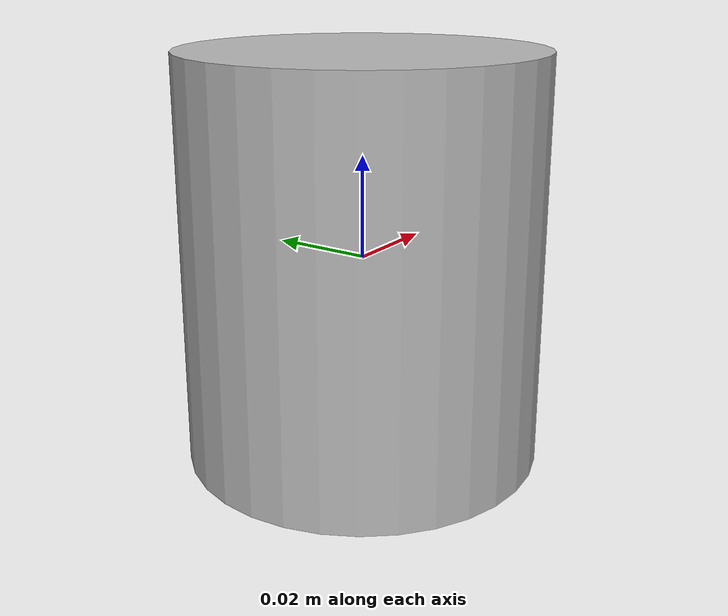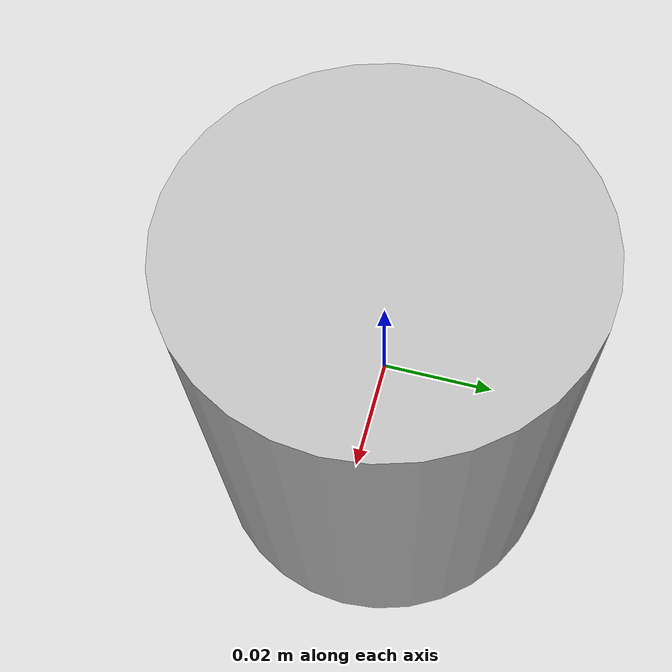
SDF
<?xml version='1.0'?>
<sdf version='1.6'>
  <model name='cans'>
    <link name='link'>
      <inertial>
        <mass>0.01</mass>
        <inertia>
          <ixx>0.00022647</ixx>
          <ixy>0</ixy>
          <ixz>0</ixz>
          <iyy>0.00022647</iyy>
          <iyz>0</iyz>
          <izz>0.0001015</izz>
        </inertia>
        <pose frame=''>0 0 0.2 0 -0 0</pose>
      </inertial>
      <self_collide>1</self_collide>
      <enable_wind>0</enable_wind>
      <kinematic>1</kinematic>
      <pose frame=''>0 0 0 0 -0 0</pose>
      <gravity>1</gravity>
      <visual name='ModelPreview_8::link::visual_1'>
        <geometry>
          <mesh>
            <uri>model://cans/meshes/cylindermesh.dae</uri>
            <scale>1 1 1</scale>
          </mesh>
        </geometry>
        <material>
          <script>
            <uri>model://cans/materials/scripts</uri>
            <uri>model://cans/materials/textures</uri>
            <name>cylinder</name>
          </script>

        </material>
        <pose frame=''>0 0 0 0 -0 0</pose>
        <transparency>0</transparency>
        <cast_shadows>1</cast_shadows>
      </visual>
      <visual name='visual'>
        <geometry>
          <mesh>
            <uri>model://cans/meshes/cylindermesh.dae</uri>
            <scale>1 1 1</scale>
          </mesh>
        </geometry>
        <material>
          <script>
            <uri>model://cans/materials/scripts</uri>
            <uri>model://cans/materials/textures</uri>
            <name>cylinder</name>
          </script>

        </material>
        <pose frame=''>0 0 0 0 -0 0</pose>
        <transparency>0</transparency>
        <cast_shadows>1</cast_shadows>
      </visual>
      <collision name='collision'>
        <laser_retro>0</laser_retro>
        <max_contacts>10</max_contacts>
        <pose frame=''>0 0 0 0 -0 0</pose>
        <geometry>
          <mesh>
            <uri>model://cans/meshes/cylindermesh.dae</uri>
            <scale>1 1 1</scale>
          </mesh>
        </geometry>
        <surface>
          <friction>
            <ode>
              <mu>1</mu>
              <mu2>1</mu2>
              <fdir1>0 0 0</fdir1>
              <slip1>0</slip1>
              <slip2>0</slip2>
            </ode>
            <torsional>
              <coefficient>1</coefficient>
              <patch_radius>0</patch_radius>
              <surface_radius>0</surface_radius>
              <use_patch_radius>1</use_patch_radius>
              <ode>
                <slip>0</slip>
              </ode>
            </torsional>
          </friction>
          <bounce>
            <restitution_coefficient>0</restitution_coefficient>
            <threshold>1e+06</threshold>
          </bounce>
          <contact>
            <collide_without_contact>0</collide_without_contact>
            <collide_without_contact_bitmask>1</collide_without_contact_bitmask>
            <collide_bitmask>1</collide_bitmask>
            <ode>
              <soft_cfm>0</soft_cfm>
              <soft_erp>0.2</soft_erp>
              <kp>1e+13</kp>
              <kd>1</kd>
              <max_vel>0.01</max_vel>
              <min_depth>0</min_depth>
            </ode>
            <bullet>
              <split_impulse>1</split_impulse>
              <split_impulse_penetration_threshold>-0.01</split_impulse_penetration_threshold>
              <soft_cfm>0</soft_cfm>
              <soft_erp>0.2</soft_erp>
              <kp>1e+13</kp>
              <kd>1</kd>
            </bullet>
          </contact>
        </surface>
      </collision>
    </link>
    <static>0</static>
    <allow_auto_disable>1</allow_auto_disable>
  </model>
</sdf>
